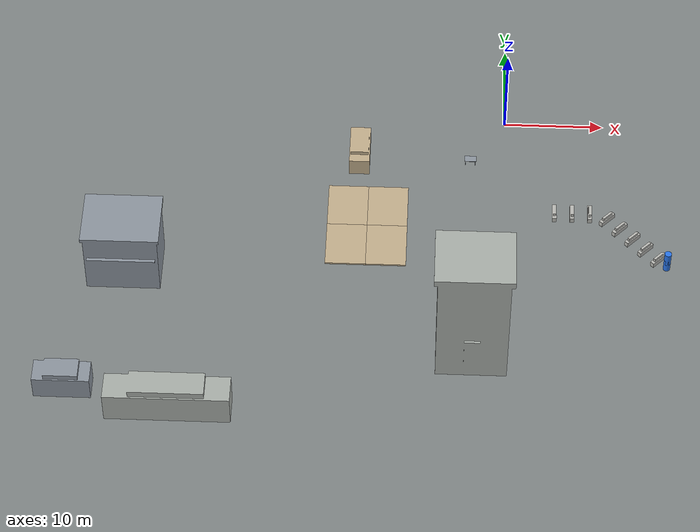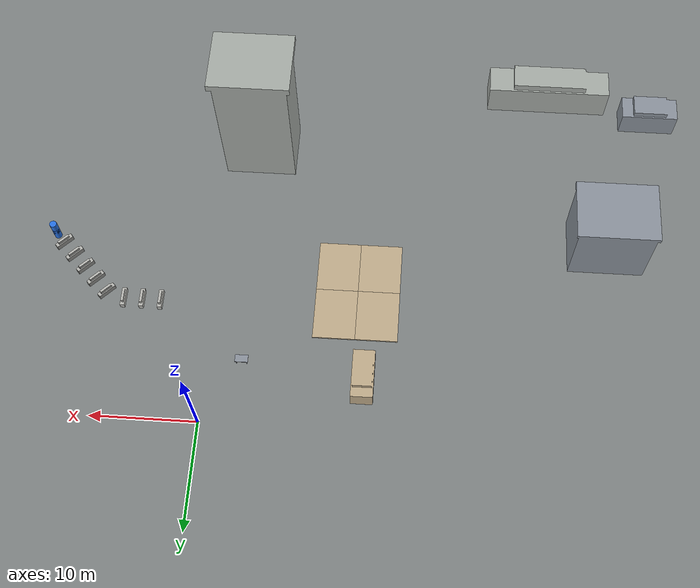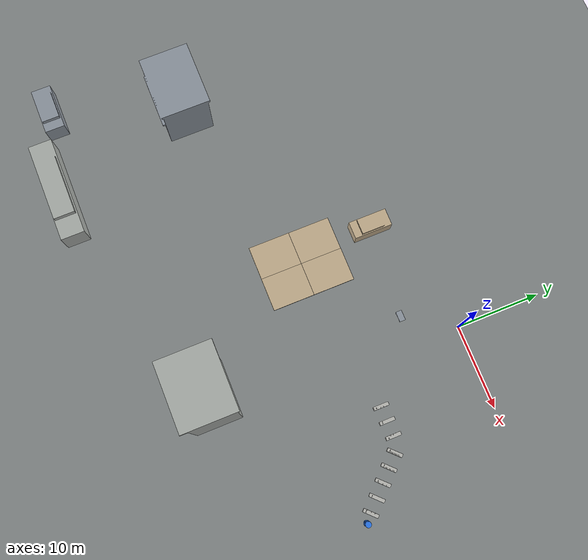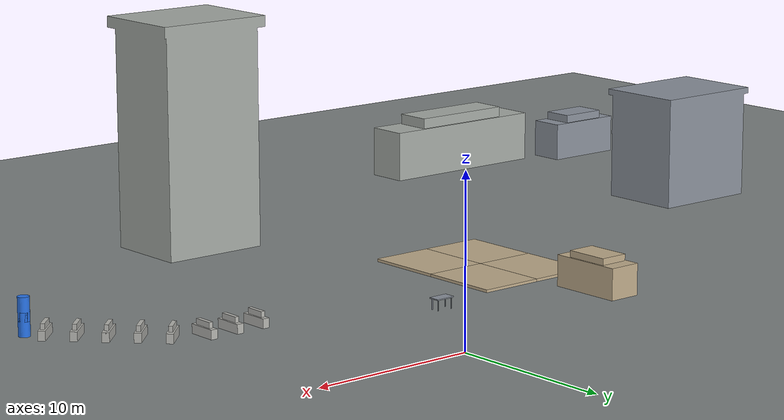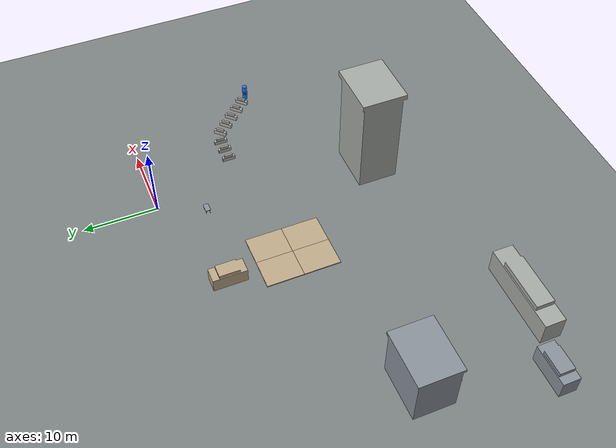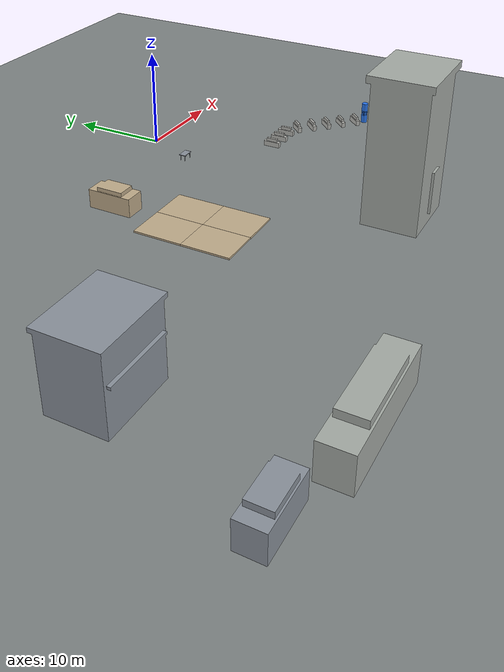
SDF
<sdf version="1.9">
 <world name="default">
  <model name="ground_plane">
   <static>true</static>
   <link name="link">
    <collision name="collision">
     <geometry><plane><normal>0 0 1</normal><size>160 140</size></plane></geometry>
     <surface><friction><ode><mu>1.0</mu><mu2>1.0</mu2></ode></friction></surface>
    </collision>
    <visual name="visual">
     <geometry><plane><normal>0 0 1</normal><size>160 140</size></plane></geometry>
     <material><diffuse>0.50 0.52 0.52 1</diffuse><ambient>0.50 0.52 0.52 1</ambient></material>
    </visual>
   </link>
  </model>
  <model name="ambulance">
   <static>true</static>
   <link name="link">
    <visual name="visual">
     <geometry>
      <mesh>
       <scale>0.0254 0.0254 0.0254</scale>
       <uri>file:///home/k/clb_ws_jazzy/src/zebrat/gazebo_models/ambulance/meshes/ambulance.obj</uri>
      </mesh>
     </geometry>
     <material><diffuse>0.55 0.58 0.62 1</diffuse><ambient>0.55 0.58 0.62 1</ambient></material>
    </visual>
    <collision name="simple_collision">
     <pose>0 0 1.1 0 0 0</pose>
     <geometry><box><size>5.0 2.2 2.2</size></box></geometry>
     <surface><friction><ode><mu>1.0</mu><mu2>1.0</mu2></ode></friction></surface>
    </collision>
   </link>
   <pose>-41.8345 -34.9623 0 0 -0 0</pose>
  </model>
  <model name="bus">
   <static>true</static>
   <link name="link">
    <visual name="visual">
     <geometry>
      <mesh>
       <scale>0.01 0.01 0.01</scale>
       <uri>file:///home/k/clb_ws_jazzy/src/zebrat/gazebo_models/bus/meshes/bus.obj</uri>
      </mesh>
     </geometry>
     <material><diffuse>0.66 0.68 0.66 1</diffuse><ambient>0.66 0.68 0.66 1</ambient></material>
    </visual>
    <collision name="simple_collision">
     <pose>0 0 1.5 0 0 0</pose>
     <geometry><box><size>8.0 3.0 3.0</size></box></geometry>
     <surface><friction><ode><mu>1.0</mu><mu2>1.0</mu2></ode></friction></surface>
    </collision>
   </link>
   <pose>-31.6362 -37.1002 0 0 -0 0</pose>
  </model>
  <model name="drc_practice_angled_barrier_45_0">
   <static>true</static>
   <static>1</static>
   <link name="one_link">
    <visual name="visual">
     <geometry>
      <mesh>
       <uri>file:///home/k/clb_ws_jazzy/src/zebrat/gazebo_models/drc_practice_orange_jersey_barrier/meshes/jersey_barrier.dae</uri>
      </mesh>
     </geometry>
     <material><diffuse>0.72 0.72 0.70 1</diffuse><ambient>0.72 0.72 0.70 1</ambient></material>
    </visual>
    <pose>0 0 0 0 0 -1.5707</pose>
    <collision name="simple_collision">
     <pose>0 0 0.6 0 0 0</pose>
     <geometry><box><size>10.0 4.0 1.2</size></box></geometry>
     <surface><friction><ode><mu>1.0</mu><mu2>1.0</mu2></ode></friction></surface>
    </collision>
   </link>
   <static>1</static>
   <link name="two_link">
    <visual name="visual">
     <geometry>
      <mesh>
       <uri>file:///home/k/clb_ws_jazzy/src/zebrat/gazebo_models/drc_practice_white_jersey_barrier/meshes/jersey_barrier.dae</uri>
      </mesh>
     </geometry>
     <material><diffuse>0.72 0.72 0.70 1</diffuse><ambient>0.72 0.72 0.70 1</ambient></material>
    </visual>
    <pose>1.7646 -0.008563 0 0 0 -1.5707</pose>
   </link>
   <static>1</static>
   <link name="three_link">
    <visual name="visual">
     <geometry>
      <mesh>
       <uri>file:///home/k/clb_ws_jazzy/src/zebrat/gazebo_models/drc_practice_orange_jersey_barrier/meshes/jersey_barrier.dae</uri>
      </mesh>
     </geometry>
     <material><diffuse>0.72 0.72 0.70 1</diffuse><ambient>0.72 0.72 0.70 1</ambient></material>
    </visual>
    <pose>3.52922 -0.016171 0 0 0 -1.5707</pose>
   </link>
   <static>1</static>
   <link name="four_link">
    <visual name="visual">
     <geometry>
      <mesh>
       <uri>file:///home/k/clb_ws_jazzy/src/zebrat/gazebo_models/drc_practice_white_jersey_barrier/meshes/jersey_barrier.dae</uri>
      </mesh>
     </geometry>
     <material><diffuse>0.72 0.72 0.70 1</diffuse><ambient>0.72 0.72 0.70 1</ambient></material>
    </visual>
    <pose>5.2559 -0.59667 0 0 0 -2.3562</pose>
   </link>
   <static>1</static>
   <link name="five_link">
    <visual name="visual">
     <geometry>
      <mesh>
       <uri>file:///home/k/clb_ws_jazzy/src/zebrat/gazebo_models/drc_practice_orange_jersey_barrier/meshes/jersey_barrier.dae</uri>
      </mesh>
     </geometry>
     <material><diffuse>0.72 0.72 0.70 1</diffuse><ambient>0.72 0.72 0.70 1</ambient></material>
    </visual>
    <pose>6.49818 -1.85004 0 0 0 -2.3562</pose>
   </link>
   <static>1</static>
   <link name="six_link">
    <visual name="visual">
     <geometry>
      <mesh>
       <uri>file:///home/k/clb_ws_jazzy/src/zebrat/gazebo_models/drc_practice_white_jersey_barrier/meshes/jersey_barrier.dae</uri>
      </mesh>
     </geometry>
     <material><diffuse>0.72 0.72 0.70 1</diffuse><ambient>0.72 0.72 0.70 1</ambient></material>
    </visual>
    <pose>7.74031 -3.10261 0 0 0 -2.3562</pose>
   </link>
   <static>1</static>
   <link name="seven_link">
    <visual name="visual">
     <geometry>
      <mesh>
       <uri>file:///home/k/clb_ws_jazzy/src/zebrat/gazebo_models/drc_practice_orange_jersey_barrier/meshes/jersey_barrier.dae</uri>
      </mesh>
     </geometry>
     <material><diffuse>0.72 0.72 0.70 1</diffuse><ambient>0.72 0.72 0.70 1</ambient></material>
    </visual>
    <pose>8.98256 -4.3561 0 0 0 -2.3562</pose>
   </link>
   <static>1</static>
   <link name="eight_link">
    <visual name="visual">
     <geometry>
      <mesh>
       <uri>file:///home/k/clb_ws_jazzy/src/zebrat/gazebo_models/drc_practice_white_jersey_barrier/meshes/jersey_barrier.dae</uri>
      </mesh>
     </geometry>
     <material><diffuse>0.72 0.72 0.70 1</diffuse><ambient>0.72 0.72 0.70 1</ambient></material>
    </visual>
    <pose>10.2248 -5.60978 0 0 0 -2.3562</pose>
   </link>
   <static>1</static>
   <link name="nine_link">
    <visual name="visual">
     <pose>0 0 0.7 0 -0 0</pose>
     <geometry><cylinder><radius>0.34</radius><length>1.4</length></cylinder></geometry>
     <material><ambient>0.16 0.46 0.92 1</ambient><diffuse>0.16 0.46 0.92 1</diffuse></material>
    </visual>
    <collision name="collision">
     <pose>0 0 0.7 0 -0 0</pose>
     <geometry><cylinder><radius>0.34</radius><length>1.4</length></cylinder></geometry>
    </collision>
    <pose>11.0288 -6.44203 0 0 -0 0</pose>
   </link>
   <static>1</static>
   <link name="ten_link">
    <visual name="visual">
     <pose>0 0 0.7 0 -0 0</pose>
     <geometry><cylinder><radius>0.34</radius><length>1.4</length></cylinder></geometry>
     <material><ambient>0.16 0.46 0.92 1</ambient><diffuse>0.16 0.46 0.92 1</diffuse></material>
    </visual>
    <collision name="collision">
     <pose>0 0 0.7 0 -0 0</pose>
     <geometry><cylinder><radius>0.34</radius><length>1.4</length></cylinder></geometry>
    </collision>
    <pose>11.0288 -6.44203 0.866 0 -0 0</pose>
   </link>
   <pose>5.03702 -11.8257 0 0 -0 0</pose>
  </model>
  <model name="law_office">
   <static>true</static>
   <link name="link">
    <collision name="collision">
     <pose>0 0 6.96244 0 -0 0</pose>
     <geometry><box><size>6.84401 5.43165 13.9249</size></box></geometry>
    </collision>
    <visual name="visual">
     <geometry>
      <mesh><uri>file:///home/k/clb_ws_jazzy/src/zebrat/gazebo_models/law_office/meshes/law_office.dae</uri></mesh>
     </geometry>
     <material><diffuse>0.66 0.68 0.66 1</diffuse><ambient>0.66 0.68 0.66 1</ambient></material>
    </visual>
   </link>
   <pose>-3.05193 -29.3356 0 0 -0 0</pose>
  </model>
  <model name="mud_box">
   <static>true</static>
   <link name="link">
    <collision name="collision"><geometry><box><size>8 10 0.2</size></box></geometry></collision>
    <visual name="visual_1">
     <pose>-2 2.5 0 0 -0 0</pose>
     <cast_shadows>0</cast_shadows>
     <geometry><box><size>4 5 0.2</size></box></geometry>
     <material><diffuse>0.76 0.68 0.55 1</diffuse><ambient>0.76 0.68 0.55 1</ambient></material>
    </visual>
    <visual name="visual_2">
     <pose>2 2.5 0 0 -0 0</pose>
     <cast_shadows>0</cast_shadows>
     <geometry><box><size>4 5 0.2</size></box></geometry>
     <material><diffuse>0.76 0.68 0.55 1</diffuse><ambient>0.76 0.68 0.55 1</ambient></material>
    </visual>
    <visual name="visual_3">
     <pose>2 -2.5 0 0 -0 0</pose>
     <cast_shadows>0</cast_shadows>
     <geometry><box><size>4 5 0.2</size></box></geometry>
     <material><diffuse>0.76 0.68 0.55 1</diffuse><ambient>0.76 0.68 0.55 1</ambient></material>
    </visual>
    <visual name="visual_4">
     <pose>-2 -2.5 0 0 -0 0</pose>
     <cast_shadows>0</cast_shadows>
     <geometry><box><size>4 5 0.2</size></box></geometry>
     <material><diffuse>0.76 0.68 0.55 1</diffuse><ambient>0.76 0.68 0.55 1</ambient></material>
    </visual>
   </link>
   <pose>-13.6175 -13.8985 0 0 -0 0</pose>
  </model>
  <model name="table_marble">
   <static>true</static>
   <pose>-3.44844 -5.85849 0.648 0 -0 0</pose>
   <link name="link">
    <visual name="visual">
     <geometry>
      <mesh>
       <uri>file:///home/k/clb_ws_jazzy/src/zebrat/gazebo_models/table_marble/meshes/table_lightmap.dae</uri>
       <scale>0.25 0.25 0.25</scale>
      </mesh>
     </geometry>
     <material>
      <lighting>0</lighting>
      <diffuse>0.55 0.58 0.62 1</diffuse>
      <ambient>0.55 0.58 0.62 1</ambient>
     </material>
    </visual>
    <collision name="simple_collision">
     <pose>0 0 0.5 0 0 0</pose>
     <geometry><box><size>2.5 1.8 1.0</size></box></geometry>
     <surface><friction><ode><mu>1.0</mu><mu2>1.0</mu2></ode></friction></surface>
    </collision>
   </link>
  </model>
  <model name="suv">
   <static>true</static>
   <link name="link">
    <visual name="visual">
     <pose>0 0 0 0 0 -1.5708</pose>
     <geometry>
      <mesh>
       <scale>0.06 0.06 0.06</scale>
       <uri>file:///home/k/clb_ws_jazzy/src/zebrat/gazebo_models/suv/meshes/suv.obj</uri>
      </mesh>
     </geometry>
     <material><diffuse>0.76 0.68 0.55 1</diffuse><ambient>0.76 0.68 0.55 1</ambient></material>
    </visual>
    <collision name="simple_collision">
     <pose>0 0 1.0 0 0 0</pose>
     <geometry><box><size>5.0 2.4 2.0</size></box></geometry>
     <surface><friction><ode><mu>1.0</mu><mu2>1.0</mu2></ode></friction></surface>
    </collision>
   </link>
   <pose>-14.6513 -4.85719 0 0 -0 0</pose>
  </model>
  <model name="salon">
   <static>true</static>
   <link name="link">
    <collision name="collision">
     <pose>0 0 5.69469 0 -0 0</pose>
     <geometry><box><size>7.21297 5.37875 11.3894</size></box></geometry>
    </collision>
    <visual name="visual">
     <pose>0 -0.903605 0 0 -0 0</pose>
     <geometry>
      <mesh><uri>file:///home/k/clb_ws_jazzy/src/zebrat/gazebo_models/salon/meshes/salon.dae</uri></mesh>
     </geometry>
     <material><diffuse>0.55 0.58 0.62 1</diffuse><ambient>0.55 0.58 0.62 1</ambient></material>
    </visual>
   </link>
   <pose>-37.1825 -19.0737 0 0 -0 0</pose>
  </model>
 </world>
</sdf>
